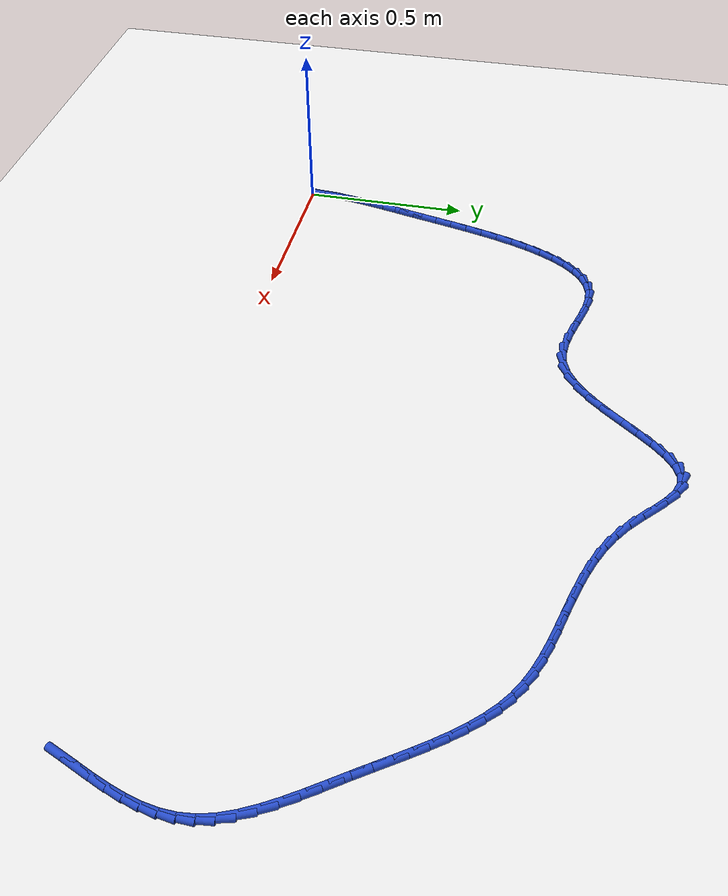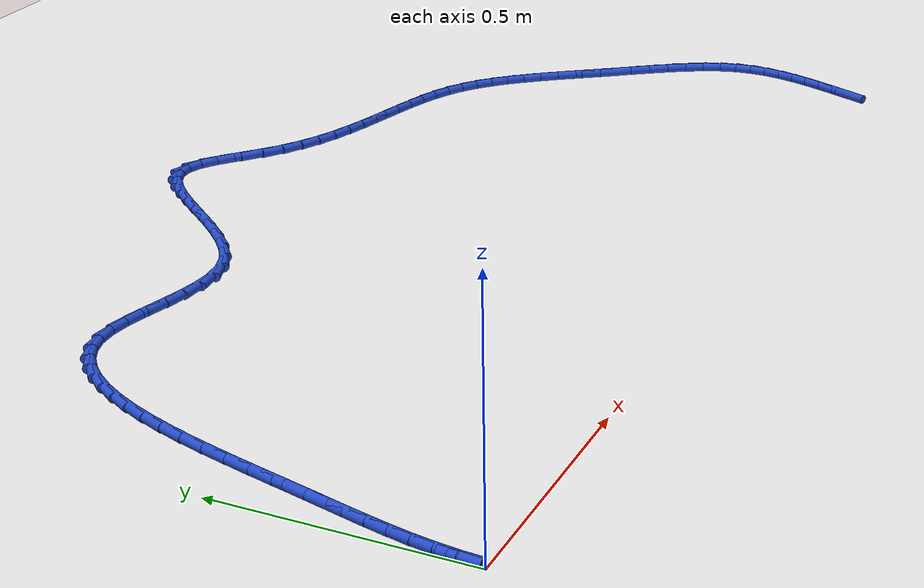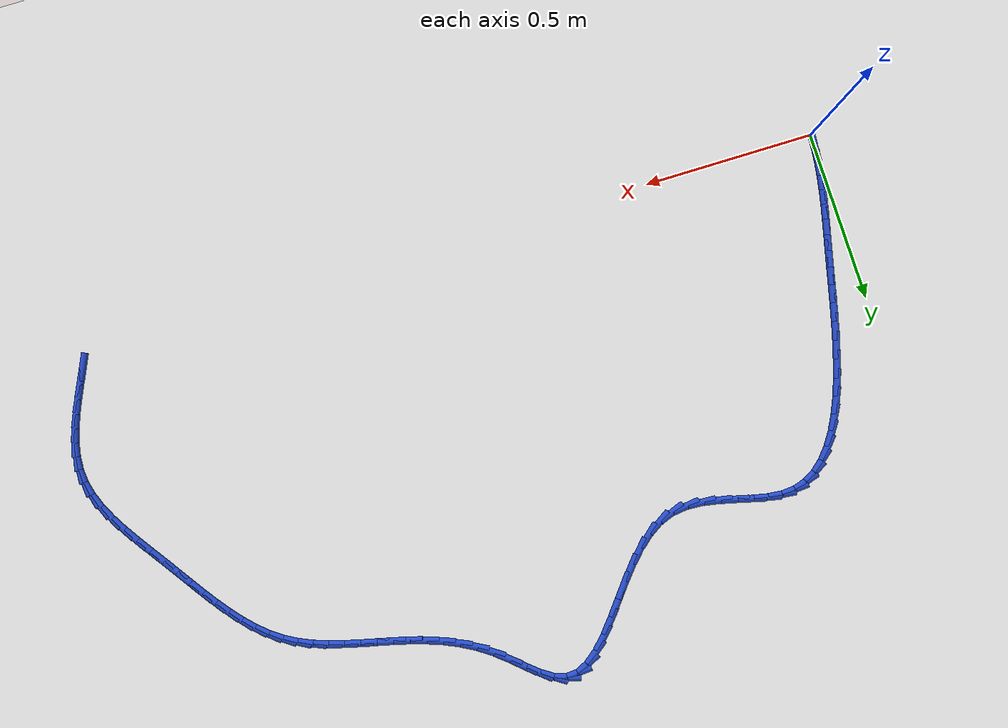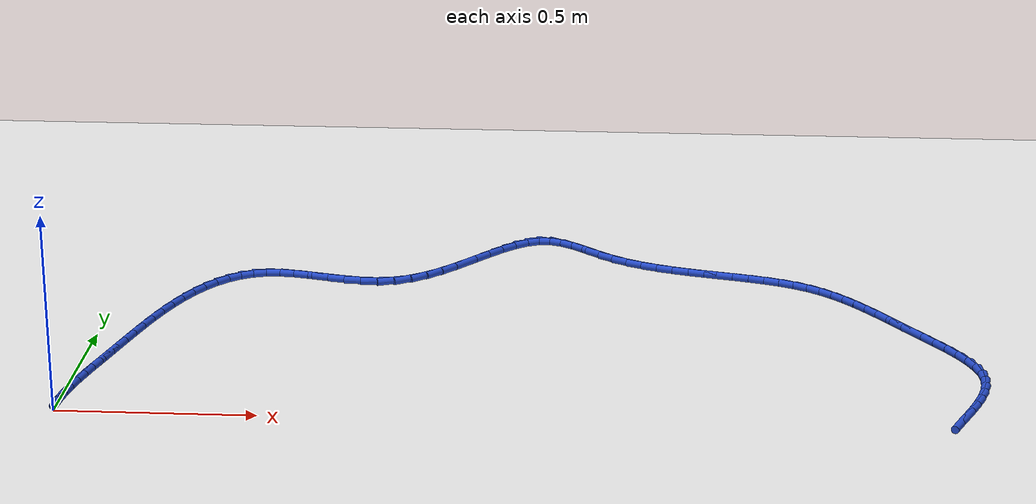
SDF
<sdf version="1.6">
 <world name="default">
  <model name="ground_plane">
   <static>1</static>
   <link name="link">
    <collision name="collision">
     <geometry><plane><normal>0 0 1</normal><size>100 100</size></plane></geometry>
     <surface><friction><ode><mu>100</mu><mu2>50</mu2></ode></friction></surface>
    </collision>
    <visual name="visual">
     <cast_shadows>0</cast_shadows>
     <geometry><plane><normal>0 0 1</normal><size>100 100</size></plane></geometry>
     <material>
      <script><uri>file://media/materials/scripts/gazebo.material</uri><name>Gazebo/WhiteGlow</name></script>
     </material>
    </visual>
   </link>
  </model>
  <model name="line">
   <link name="link_1">
    <pose>0.0026496096669003204 0.04307282719865497 0.01 0 1.57 1.460139329362251</pose>
    <collision name="collision">
     <geometry><cylinder><radius>0.01</radius><length>0.08</length></cylinder></geometry>
    </collision>
    <visual name="visual">
     <material>
      <script><name>Gazebo/Blue</name><uri>file://media/materials/scripts/gazebo.material</uri></script>
     </material>
     <geometry><cylinder><radius>0.01</radius><length>0.08</length></cylinder></geometry>
    </visual>
   </link>
   <link name="link_2">
    <pose>0.007363580412355519 0.08549865039412194 0.01 0 1.57 1.4174308928001462</pose>
    <collision name="collision">
     <geometry><cylinder><radius>0.01</radius><length>0.08</length></cylinder></geometry>
    </collision>
    <visual name="visual">
     <material>
      <script><name>Gazebo/Blue</name><uri>file://media/materials/scripts/gazebo.material</uri></script>
     </material>
     <geometry><cylinder><radius>0.01</radius><length>0.08</length></cylinder></geometry>
    </visual>
   </link>
   <link name="link_3">
    <pose>0.01388491874355268 0.1276863092239814 0.01 0 1.57 1.3824960369768609</pose>
    <collision name="collision">
     <geometry><cylinder><radius>0.01</radius><length>0.08</length></cylinder></geometry>
    </collision>
    <visual name="visual">
     <material>
      <script><name>Gazebo/Blue</name><uri>file://media/materials/scripts/gazebo.material</uri></script>
     </material>
     <geometry><cylinder><radius>0.01</radius><length>0.08</length></cylinder></geometry>
    </visual>
   </link>
   <link name="link_4">
    <pose>0.021956631167678986 0.170044643325814 0.01 0 1.57 1.3560512879209734</pose>
    <collision name="collision">
     <geometry><cylinder><radius>0.01</radius><length>0.08</length></cylinder></geometry>
    </collision>
    <visual name="visual">
     <material>
      <script><name>Gazebo/Blue</name><uri>file://media/materials/scripts/gazebo.material</uri></script>
     </material>
     <geometry><cylinder><radius>0.01</radius><length>0.08</length></cylinder></geometry>
    </visual>
   </link>
   <link name="link_5">
    <pose>0.03132172419192152 0.21298249233720015 0.01 0 1.57 1.3382845328337616</pose>
    <collision name="collision">
     <geometry><cylinder><radius>0.01</radius><length>0.08</length></cylinder></geometry>
    </collision>
    <visual name="visual">
     <material>
      <script><name>Gazebo/Blue</name><uri>file://media/materials/scripts/gazebo.material</uri></script>
     </material>
     <geometry><cylinder><radius>0.01</radius><length>0.08</length></cylinder></geometry>
    </visual>
   </link>
   <link name="link_6">
    <pose>0.04172320432346745 0.2569086958957203 0.01 0 1.57 1.3289344449897182</pose>
    <collision name="collision">
     <geometry><cylinder><radius>0.01</radius><length>0.08</length></cylinder></geometry>
    </collision>
    <visual name="visual">
     <material>
      <script><name>Gazebo/Blue</name><uri>file://media/materials/scripts/gazebo.material</uri></script>
     </material>
     <geometry><cylinder><radius>0.01</radius><length>0.08</length></cylinder></geometry>
    </visual>
   </link>
   <link name="link_7">
    <pose>0.052904078069503924 0.3022320936389553 0.01 0 1.57 1.3273975969979865</pose>
    <collision name="collision">
     <geometry><cylinder><radius>0.01</radius><length>0.08</length></cylinder></geometry>
    </collision>
    <visual name="visual">
     <material>
      <script><name>Gazebo/Blue</name><uri>file://media/materials/scripts/gazebo.material</uri></script>
     </material>
     <geometry><cylinder><radius>0.01</radius><length>0.08</length></cylinder></geometry>
    </visual>
   </link>
   <link name="link_8">
    <pose>0.06460735193721806 0.3493615252044854 0.01 0 1.57 1.3318365359500797</pose>
    <collision name="collision">
     <geometry><cylinder><radius>0.01</radius><length>0.08</length></cylinder></geometry>
    </collision>
    <visual name="visual">
     <material>
      <script><name>Gazebo/Blue</name><uri>file://media/materials/scripts/gazebo.material</uri></script>
     </material>
     <geometry><cylinder><radius>0.01</radius><length>0.08</length></cylinder></geometry>
    </visual>
   </link>
   <link name="link_9">
    <pose>0.07660898984305621 0.3986264044124486 0.01 0 1.57 1.3332804026628118</pose>
    <collision name="collision">
     <geometry><cylinder><radius>0.01</radius><length>0.08</length></cylinder></geometry>
    </collision>
    <visual name="visual">
     <material>
      <script><name>Gazebo/Blue</name><uri>file://media/materials/scripts/gazebo.material</uri></script>
     </material>
     <geometry><cylinder><radius>0.01</radius><length>0.08</length></cylinder></geometry>
    </visual>
   </link>
   <link name="link_10">
    <pose>0.08896728992933452 0.44967573278160305 0.01 0 1.57 1.3279400840466655</pose>
    <collision name="collision">
     <geometry><cylinder><radius>0.01</radius><length>0.08</length></cylinder></geometry>
    </collision>
    <visual name="visual">
     <material>
      <script><name>Gazebo/Blue</name><uri>file://media/materials/scripts/gazebo.material</uri></script>
     </material>
     <geometry><cylinder><radius>0.01</radius><length>0.08</length></cylinder></geometry>
    </visual>
   </link>
   <link name="link_11">
    <pose>0.10188402960887925 0.5018127334882201 0.01 0 1.57 1.31604414092353</pose>
    <collision name="collision">
     <geometry><cylinder><radius>0.01</radius><length>0.08</length></cylinder></geometry>
    </collision>
    <visual name="visual">
     <material>
      <script><name>Gazebo/Blue</name><uri>file://media/materials/scripts/gazebo.material</uri></script>
     </material>
     <geometry><cylinder><radius>0.01</radius><length>0.08</length></cylinder></geometry>
    </visual>
   </link>
   <link name="link_12">
    <pose>0.11556211673399626 0.5543379054022088 0.01 0 1.57 1.2973886681237063</pose>
    <collision name="collision">
     <geometry><cylinder><radius>0.01</radius><length>0.08</length></cylinder></geometry>
    </collision>
    <visual name="visual">
     <material>
      <script><name>Gazebo/Blue</name><uri>file://media/materials/scripts/gazebo.material</uri></script>
     </material>
     <geometry><cylinder><radius>0.01</radius><length>0.08</length></cylinder></geometry>
    </visual>
   </link>
   <link name="link_13">
    <pose>0.13020445915699155 0.6065517473934785 0.01 0 1.57 1.2713211971521223</pose>
    <collision name="collision">
     <geometry><cylinder><radius>0.01</radius><length>0.08</length></cylinder></geometry>
    </collision>
    <visual name="visual">
     <material>
      <script><name>Gazebo/Blue</name><uri>file://media/materials/scripts/gazebo.material</uri></script>
     </material>
     <geometry><cylinder><radius>0.01</radius><length>0.08</length></cylinder></geometry>
    </visual>
   </link>
   <link name="link_14">
    <pose>0.14601396473017092 0.6577547583319379 0.01 0 1.57 1.2366953171147226</pose>
    <collision name="collision">
     <geometry><cylinder><radius>0.01</radius><length>0.08</length></cylinder></geometry>
    </collision>
    <visual name="visual">
     <material>
      <script><name>Gazebo/Blue</name><uri>file://media/materials/scripts/gazebo.material</uri></script>
     </material>
     <geometry><cylinder><radius>0.01</radius><length>0.08</length></cylinder></geometry>
    </visual>
   </link>
   <link name="link_15">
    <pose>0.16319354130584038 0.7072474370874962 0.01 0 1.57 1.1917662592871698</pose>
    <collision name="collision">
     <geometry><cylinder><radius>0.01</radius><length>0.08</length></cylinder></geometry>
    </collision>
    <visual name="visual">
     <material>
      <script><name>Gazebo/Blue</name><uri>file://media/materials/scripts/gazebo.material</uri></script>
     </material>
     <geometry><cylinder><radius>0.01</radius><length>0.08</length></cylinder></geometry>
    </visual>
   </link>
   <link name="link_16">
    <pose>0.1819460967363059 0.7543302825300626 0.01 0 1.57 1.13402967386434</pose>
    <collision name="collision">
     <geometry><cylinder><radius>0.01</radius><length>0.08</length></cylinder></geometry>
    </collision>
    <visual name="visual">
     <material>
      <script><name>Gazebo/Blue</name><uri>file://media/materials/scripts/gazebo.material</uri></script>
     </material>
     <geometry><cylinder><radius>0.01</radius><length>0.08</length></cylinder></geometry>
    </visual>
   </link>
   <link name="link_17">
    <pose>0.20247453887387334 0.7983037935295462 0.01 0 1.57 1.0600233958224863</pose>
    <collision name="collision">
     <geometry><cylinder><radius>0.01</radius><length>0.08</length></cylinder></geometry>
    </collision>
    <visual name="visual">
     <material>
      <script><name>Gazebo/Blue</name><uri>file://media/materials/scripts/gazebo.material</uri></script>
     </material>
     <geometry><cylinder><radius>0.01</radius><length>0.08</length></cylinder></geometry>
    </visual>
   </link>
   <link name="link_18">
    <pose>0.22498177557084853 0.8384684689558555 0.01 0 1.57 0.9651799736025226</pose>
    <collision name="collision">
     <geometry><cylinder><radius>0.01</radius><length>0.08</length></cylinder></geometry>
    </collision>
    <visual name="visual">
     <material>
      <script><name>Gazebo/Blue</name><uri>file://media/materials/scripts/gazebo.material</uri></script>
     </material>
     <geometry><cylinder><radius>0.01</radius><length>0.08</length></cylinder></geometry>
    </visual>
   </link>
   <link name="link_19">
    <pose>0.24967071467953755 0.8741248076789001 0.01 0 1.57 0.8440032859838902</pose>
    <collision name="collision">
     <geometry><cylinder><radius>0.01</radius><length>0.08</length></cylinder></geometry>
    </collision>
    <visual name="visual">
     <material>
      <script><name>Gazebo/Blue</name><uri>file://media/materials/scripts/gazebo.material</uri></script>
     </material>
     <geometry><cylinder><radius>0.01</radius><length>0.08</length></cylinder></geometry>
    </visual>
   </link>
   <link name="link_20">
    <pose>0.2767442640522463 0.9045733085685889 0.01 0 1.57 0.691218291757534</pose>
    <collision name="collision">
     <geometry><cylinder><radius>0.01</radius><length>0.08</length></cylinder></geometry>
    </collision>
    <visual name="visual">
     <material>
      <script><name>Gazebo/Blue</name><uri>file://media/materials/scripts/gazebo.material</uri></script>
     </material>
     <geometry><cylinder><radius>0.01</radius><length>0.08</length></cylinder></geometry>
    </visual>
   </link>
   <link name="link_21">
    <pose>0.3064053315412807 0.9291144704948312 0.01 0 1.57 0.5048755767474941</pose>
    <collision name="collision">
     <geometry><cylinder><radius>0.01</radius><length>0.08</length></cylinder></geometry>
    </collision>
    <visual name="visual">
     <material>
      <script><name>Gazebo/Blue</name><uri>file://media/materials/scripts/gazebo.material</uri></script>
     </material>
     <geometry><cylinder><radius>0.01</radius><length>0.08</length></cylinder></geometry>
    </visual>
   </link>
   <link name="link_22">
    <pose>0.3388568249989464 0.9470487923275355 0.01 0 1.57 0.29131526927594054</pose>
    <collision name="collision">
     <geometry><cylinder><radius>0.01</radius><length>0.08</length></cylinder></geometry>
    </collision>
    <visual name="visual">
     <material>
      <script><name>Gazebo/Blue</name><uri>file://media/materials/scripts/gazebo.material</uri></script>
     </material>
     <geometry><cylinder><radius>0.01</radius><length>0.08</length></cylinder></geometry>
    </visual>
   </link>
   <link name="link_23">
    <pose>0.37430165227754975 0.9576767729366116 0.01 0 1.57 0.06888097786250724</pose>
    <collision name="collision">
     <geometry><cylinder><radius>0.01</radius><length>0.08</length></cylinder></geometry>
    </collision>
    <visual name="visual">
     <material>
      <script><name>Gazebo/Blue</name><uri>file://media/materials/scripts/gazebo.material</uri></script>
     </material>
     <geometry><cylinder><radius>0.01</radius><length>0.08</length></cylinder></geometry>
    </visual>
   </link>
   <link name="link_24">
    <pose>0.4129302743863518 0.9603417663008713 0.01 0 1.57 -0.1087090265260488</pose>
    <collision name="collision">
     <geometry><cylinder><radius>0.01</radius><length>0.08</length></cylinder></geometry>
    </collision>
    <visual name="visual">
     <material>
      <script><name>Gazebo/Blue</name><uri>file://media/materials/scripts/gazebo.material</uri></script>
     </material>
     <geometry><cylinder><radius>0.01</radius><length>0.08</length></cylinder></geometry>
    </visual>
   </link>
   <link name="link_25">
    <pose>0.454522080896925 0.9558024661094408 0.01 0 1.57 -0.20859219315116076</pose>
    <collision name="collision">
     <geometry><cylinder><radius>0.01</radius><length>0.08</length></cylinder></geometry>
    </collision>
    <visual name="visual">
     <material>
      <script><name>Gazebo/Blue</name><uri>file://media/materials/scripts/gazebo.material</uri></script>
     </material>
     <geometry><cylinder><radius>0.01</radius><length>0.08</length></cylinder></geometry>
    </visual>
   </link>
   <link name="link_26">
    <pose>0.498361133587482 0.9465230046474837 0.01 0 1.57 -0.2474423943853463</pose>
    <collision name="collision">
     <geometry><cylinder><radius>0.01</radius><length>0.08</length></cylinder></geometry>
    </collision>
    <visual name="visual">
     <material>
      <script><name>Gazebo/Blue</name><uri>file://media/materials/scripts/gazebo.material</uri></script>
     </material>
     <geometry><cylinder><radius>0.01</radius><length>0.08</length></cylinder></geometry>
    </visual>
   </link>
   <link name="link_27">
    <pose>0.5437020122654131 0.9350690221139187 0.01 0 1.57 -0.23553503521103783</pose>
    <collision name="collision">
     <geometry><cylinder><radius>0.01</radius><length>0.08</length></cylinder></geometry>
    </collision>
    <visual name="visual">
     <material>
      <script><name>Gazebo/Blue</name><uri>file://media/materials/scripts/gazebo.material</uri></script>
     </material>
     <geometry><cylinder><radius>0.01</radius><length>0.08</length></cylinder></geometry>
    </visual>
   </link>
   <link name="link_28">
    <pose>0.5897992967381088 0.9240061587076634 0.01 0 1.57 -0.17402747333654878</pose>
    <collision name="collision">
     <geometry><cylinder><radius>0.01</radius><length>0.08</length></cylinder></geometry>
    </collision>
    <visual name="visual">
     <material>
      <script><name>Gazebo/Blue</name><uri>file://media/materials/scripts/gazebo.material</uri></script>
     </material>
     <geometry><cylinder><radius>0.01</radius><length>0.08</length></cylinder></geometry>
    </visual>
   </link>
   <link name="link_29">
    <pose>0.6359075668129591 0.9159000546276366 0.01 0 1.57 -0.05688118333882828</pose>
    <collision name="collision">
     <geometry><cylinder><radius>0.01</radius><length>0.08</length></cylinder></geometry>
    </collision>
    <visual name="visual">
     <material>
      <script><name>Gazebo/Blue</name><uri>file://media/materials/scripts/gazebo.material</uri></script>
     </material>
     <geometry><cylinder><radius>0.01</radius><length>0.08</length></cylinder></geometry>
    </visual>
   </link>
   <link name="link_30">
    <pose>0.6812814022973541 0.9133163500727559 0.01 0 1.57 0.12474949393419657</pose>
    <collision name="collision">
     <geometry><cylinder><radius>0.01</radius><length>0.08</length></cylinder></geometry>
    </collision>
    <visual name="visual">
     <material>
      <script><name>Gazebo/Blue</name><uri>file://media/materials/scripts/gazebo.material</uri></script>
     </material>
     <geometry><cylinder><radius>0.01</radius><length>0.08</length></cylinder></geometry>
    </visual>
   </link>
   <link name="link_31">
    <pose>0.7251753829986847 0.9188206852419399 0.01 0 1.57 0.36061511473032476</pose>
    <collision name="collision">
     <geometry><cylinder><radius>0.01</radius><length>0.08</length></cylinder></geometry>
    </collision>
    <visual name="visual">
     <material>
      <script><name>Gazebo/Blue</name><uri>file://media/materials/scripts/gazebo.material</uri></script>
     </material>
     <geometry><cylinder><radius>0.01</radius><length>0.08</length></cylinder></geometry>
    </visual>
   </link>
   <link name="link_32">
    <pose>0.7669325696557691 0.9345675407247536 0.01 0 1.57 0.5662187043159957</pose>
    <collision name="collision">
     <geometry><cylinder><radius>0.01</radius><length>0.08</length></cylinder></geometry>
    </collision>
    <visual name="visual">
     <material>
      <script><name>Gazebo/Blue</name><uri>file://media/materials/scripts/gazebo.material</uri></script>
     </material>
     <geometry><cylinder><radius>0.01</radius><length>0.08</length></cylinder></geometry>
    </visual>
   </link>
   <link name="link_33">
    <pose>0.8065352765329802 0.9597408674655573 0.01 0 1.57 0.7109833255921929</pose>
    <collision name="collision">
     <geometry><cylinder><radius>0.01</radius><length>0.08</length></cylinder></geometry>
    </collision>
    <visual name="visual">
     <material>
      <script><name>Gazebo/Blue</name><uri>file://media/materials/scripts/gazebo.material</uri></script>
     </material>
     <geometry><cylinder><radius>0.01</radius><length>0.08</length></cylinder></geometry>
    </visual>
   </link>
   <link name="link_34">
    <pose>0.8442466895998031 0.9922194413988233 0.01 0 1.57 0.8067189992806727</pose>
    <collision name="collision">
     <geometry><cylinder><radius>0.01</radius><length>0.08</length></cylinder></geometry>
    </collision>
    <visual name="visual">
     <material>
      <script><name>Gazebo/Blue</name><uri>file://media/materials/scripts/gazebo.material</uri></script>
     </material>
     <geometry><cylinder><radius>0.01</radius><length>0.08</length></cylinder></geometry>
    </visual>
   </link>
   <link name="link_35">
    <pose>0.8803312031458321 1.0298764235495068 0.01 0 1.57 0.8645971121159285</pose>
    <collision name="collision">
     <geometry><cylinder><radius>0.01</radius><length>0.08</length></cylinder></geometry>
    </collision>
    <visual name="visual">
     <material>
      <script><name>Gazebo/Blue</name><uri>file://media/materials/scripts/gazebo.material</uri></script>
     </material>
     <geometry><cylinder><radius>0.01</radius><length>0.08</length></cylinder></geometry>
    </visual>
   </link>
   <link name="link_36">
    <pose>0.9150532114606617 1.0705849749425616 0.01 0 1.57 0.8914258986588142</pose>
    <collision name="collision">
     <geometry><cylinder><radius>0.01</radius><length>0.08</length></cylinder></geometry>
    </collision>
    <visual name="visual">
     <material>
      <script><name>Gazebo/Blue</name><uri>file://media/materials/scripts/gazebo.material</uri></script>
     </material>
     <geometry><cylinder><radius>0.01</radius><length>0.08</length></cylinder></geometry>
    </visual>
   </link>
   <link name="link_37">
    <pose>0.9486771088338859 1.1122182566029424 0.01 0 1.57 0.8893765129638842</pose>
    <collision name="collision">
     <geometry><cylinder><radius>0.01</radius><length>0.08</length></cylinder></geometry>
    </collision>
    <visual name="visual">
     <material>
      <script><name>Gazebo/Blue</name><uri>file://media/materials/scripts/gazebo.material</uri></script>
     </material>
     <geometry><cylinder><radius>0.01</radius><length>0.08</length></cylinder></geometry>
    </visual>
   </link>
   <link name="link_38">
    <pose>0.9814672895550991 1.1526494295556033 0.01 0 1.57 0.8556968707887486</pose>
    <collision name="collision">
     <geometry><cylinder><radius>0.01</radius><length>0.08</length></cylinder></geometry>
    </collision>
    <visual name="visual">
     <material>
      <script><name>Gazebo/Blue</name><uri>file://media/materials/scripts/gazebo.material</uri></script>
     </material>
     <geometry><cylinder><radius>0.01</radius><length>0.08</length></cylinder></geometry>
    </visual>
   </link>
   <link name="link_39">
    <pose>1.013688147913896 1.1897516548254996 0.01 0 1.57 0.7811583897106996</pose>
    <collision name="collision">
     <geometry><cylinder><radius>0.01</radius><length>0.08</length></cylinder></geometry>
    </collision>
    <visual name="visual">
     <material>
      <script><name>Gazebo/Blue</name><uri>file://media/materials/scripts/gazebo.material</uri></script>
     </material>
     <geometry><cylinder><radius>0.01</radius><length>0.08</length></cylinder></geometry>
    </visual>
   </link>
   <link name="link_40">
    <pose>1.04560407819987 1.2213980934375848 0.01 0 1.57 0.6466512454995315</pose>
    <collision name="collision">
     <geometry><cylinder><radius>0.01</radius><length>0.08</length></cylinder></geometry>
    </collision>
    <visual name="visual">
     <material>
      <script><name>Gazebo/Blue</name><uri>file://media/materials/scripts/gazebo.material</uri></script>
     </material>
     <geometry><cylinder><radius>0.01</radius><length>0.08</length></cylinder></geometry>
    </visual>
   </link>
   <link name="link_41">
    <pose>1.0774794747026155 1.2454619064168135 0.01 0 1.57 0.42051159910092095</pose>
    <collision name="collision">
     <geometry><cylinder><radius>0.01</radius><length>0.08</length></cylinder></geometry>
    </collision>
    <visual name="visual">
     <material>
      <script><name>Gazebo/Blue</name><uri>file://media/materials/scripts/gazebo.material</uri></script>
     </material>
     <geometry><cylinder><radius>0.01</radius><length>0.08</length></cylinder></geometry>
    </visual>
   </link>
   <link name="link_42">
    <pose>1.1095787317117276 1.2598162547881409 0.01 0 1.57 0.07711700090607639</pose>
    <collision name="collision">
     <geometry><cylinder><radius>0.01</radius><length>0.08</length></cylinder></geometry>
    </collision>
    <visual name="visual">
     <material>
      <script><name>Gazebo/Blue</name><uri>file://media/materials/scripts/gazebo.material</uri></script>
     </material>
     <geometry><cylinder><radius>0.01</radius><length>0.08</length></cylinder></geometry>
    </visual>
   </link>
   <link name="link_43">
    <pose>1.1421662435167996 1.262334299576521 0.01 0 1.57 -0.3197321535231422</pose>
    <collision name="collision">
     <geometry><cylinder><radius>0.01</radius><length>0.08</length></cylinder></geometry>
    </collision>
    <visual name="visual">
     <material>
      <script><name>Gazebo/Blue</name><uri>file://media/materials/scripts/gazebo.material</uri></script>
     </material>
     <geometry><cylinder><radius>0.01</radius><length>0.08</length></cylinder></geometry>
    </visual>
   </link>
   <link name="link_44">
    <pose>1.1755025355176567 1.2512969143012802 0.01 0 1.57 -0.5799717321479565</pose>
    <collision name="collision">
     <geometry><cylinder><radius>0.01</radius><length>0.08</length></cylinder></geometry>
    </collision>
    <visual name="visual">
     <material>
      <script><name>Gazebo/Blue</name><uri>file://media/materials/scripts/gazebo.material</uri></script>
     </material>
     <geometry><cylinder><radius>0.01</radius><length>0.08</length></cylinder></geometry>
    </visual>
   </link>
   <link name="link_45">
    <pose>1.209811741626421 1.2288199910815454 0.01 0 1.57 -0.6968246334765356</pose>
    <collision name="collision">
     <geometry><cylinder><radius>0.01</radius><length>0.08</length></cylinder></geometry>
    </collision>
    <visual name="visual">
     <material>
      <script><name>Gazebo/Blue</name><uri>file://media/materials/scripts/gazebo.material</uri></script>
     </material>
     <geometry><cylinder><radius>0.01</radius><length>0.08</length></cylinder></geometry>
    </visual>
   </link>
   <link name="link_46">
    <pose>1.2452980400003082 1.1991224053455214 0.01 0 1.57 -0.7252281345553646</pose>
    <collision name="collision">
     <geometry><cylinder><radius>0.01</radius><length>0.08</length></cylinder></geometry>
    </collision>
    <visual name="visual">
     <material>
      <script><name>Gazebo/Blue</name><uri>file://media/materials/scripts/gazebo.material</uri></script>
     </material>
     <geometry><cylinder><radius>0.01</radius><length>0.08</length></cylinder></geometry>
    </visual>
   </link>
   <link name="link_47">
    <pose>1.2821654038363102 1.1664446317009598 0.01 0 1.57 -0.6850529834486366</pose>
    <collision name="collision">
     <geometry><cylinder><radius>0.01</radius><length>0.08</length></cylinder></geometry>
    </collision>
    <visual name="visual">
     <material>
      <script><name>Gazebo/Blue</name><uri>file://media/materials/scripts/gazebo.material</uri></script>
     </material>
     <geometry><cylinder><radius>0.01</radius><length>0.08</length></cylinder></geometry>
    </visual>
   </link>
   <link name="link_48">
    <pose>1.32061779022801 1.135026992760359 0.01 0 1.57 -0.5902988109571177</pose>
    <collision name="collision">
     <geometry><cylinder><radius>0.01</radius><length>0.08</length></cylinder></geometry>
    </collision>
    <visual name="visual">
     <material>
      <script><name>Gazebo/Blue</name><uri>file://media/materials/scripts/gazebo.material</uri></script>
     </material>
     <geometry><cylinder><radius>0.01</radius><length>0.08</length></cylinder></geometry>
    </visual>
   </link>
   <link name="link_49">
    <pose>1.3607558717823172 1.1081349396417972 0.01 0 1.57 -0.49401061503865684</pose>
    <collision name="collision">
     <geometry><cylinder><radius>0.01</radius><length>0.08</length></cylinder></geometry>
    </collision>
    <visual name="visual">
     <material>
      <script><name>Gazebo/Blue</name><uri>file://media/materials/scripts/gazebo.material</uri></script>
     </material>
     <geometry><cylinder><radius>0.01</radius><length>0.08</length></cylinder></geometry>
    </visual>
   </link>
   <link name="link_50">
    <pose>1.4023317850599142 1.085744195575143 0.01 0 1.57 -0.4110133203528333</pose>
    <collision name="collision">
     <geometry><cylinder><radius>0.01</radius><length>0.08</length></cylinder></geometry>
    </collision>
    <visual name="visual">
     <material>
      <script><name>Gazebo/Blue</name><uri>file://media/materials/scripts/gazebo.material</uri></script>
     </material>
     <geometry><cylinder><radius>0.01</radius><length>0.08</length></cylinder></geometry>
    </visual>
   </link>
   <link name="link_51">
    <pose>1.4450242232540627 1.0671372737288356 0.01 0 1.57 -0.3432131948759112</pose>
    <collision name="collision">
     <geometry><cylinder><radius>0.01</radius><length>0.08</length></cylinder></geometry>
    </collision>
    <visual name="visual">
     <material>
      <script><name>Gazebo/Blue</name><uri>file://media/materials/scripts/gazebo.material</uri></script>
     </material>
     <geometry><cylinder><radius>0.01</radius><length>0.08</length></cylinder></geometry>
    </visual>
   </link>
   <link name="link_52">
    <pose>1.4885118795580246 1.0515966872713136 0.01 0 1.57 -0.2915249848013818</pose>
    <collision name="collision">
     <geometry><cylinder><radius>0.01</radius><length>0.08</length></cylinder></geometry>
    </collision>
    <visual name="visual">
     <material>
      <script><name>Gazebo/Blue</name><uri>file://media/materials/scripts/gazebo.material</uri></script>
     </material>
     <geometry><cylinder><radius>0.01</radius><length>0.08</length></cylinder></geometry>
    </visual>
   </link>
   <link name="link_53">
    <pose>1.5324734471650612 1.0384049493710177 0.01 0 1.57 -0.2562927522322494</pose>
    <collision name="collision">
     <geometry><cylinder><radius>0.01</radius><length>0.08</length></cylinder></geometry>
    </collision>
    <visual name="visual">
     <material>
      <script><name>Gazebo/Blue</name><uri>file://media/materials/scripts/gazebo.material</uri></script>
     </material>
     <geometry><cylinder><radius>0.01</radius><length>0.08</length></cylinder></geometry>
    </visual>
   </link>
   <link name="link_54">
    <pose>1.5765876192684334 1.0268445731963858 0.01 0 1.57 -0.2376866372476625</pose>
    <collision name="collision">
     <geometry><cylinder><radius>0.01</radius><length>0.08</length></cylinder></geometry>
    </collision>
    <visual name="visual">
     <material>
      <script><name>Gazebo/Blue</name><uri>file://media/materials/scripts/gazebo.material</uri></script>
     </material>
     <geometry><cylinder><radius>0.01</radius><length>0.08</length></cylinder></geometry>
    </visual>
   </link>
   <link name="link_55">
    <pose>1.6205330890614036 1.0161980719158576 0.01 0 1.57 -0.23599757157807744</pose>
    <collision name="collision">
     <geometry><cylinder><radius>0.01</radius><length>0.08</length></cylinder></geometry>
    </collision>
    <visual name="visual">
     <material>
      <script><name>Gazebo/Blue</name><uri>file://media/materials/scripts/gazebo.material</uri></script>
     </material>
     <geometry><cylinder><radius>0.01</radius><length>0.08</length></cylinder></geometry>
    </visual>
   </link>
   <link name="link_56">
    <pose>1.6639885497372324 1.0057479586978726 0.01 0 1.57 -0.25181258754173313</pose>
    <collision name="collision">
     <geometry><cylinder><radius>0.01</radius><length>0.08</length></cylinder></geometry>
    </collision>
    <visual name="visual">
     <material>
      <script><name>Gazebo/Blue</name><uri>file://media/materials/scripts/gazebo.material</uri></script>
     </material>
     <geometry><cylinder><radius>0.01</radius><length>0.08</length></cylinder></geometry>
    </visual>
   </link>
   <link name="link_57">
    <pose>1.7066326944891816 0.9947767467108699 0.01 0 1.57 -0.28606311298198234</pose>
    <collision name="collision">
     <geometry><cylinder><radius>0.01</radius><length>0.08</length></cylinder></geometry>
    </collision>
    <visual name="visual">
     <material>
      <script><name>Gazebo/Blue</name><uri>file://media/materials/scripts/gazebo.material</uri></script>
     </material>
     <geometry><cylinder><radius>0.01</radius><length>0.08</length></cylinder></geometry>
    </visual>
   </link>
   <link name="link_58">
    <pose>1.7481442165105134 0.9825669491232889 0.01 0 1.57 -0.33991174146069714</pose>
    <collision name="collision">
     <geometry><cylinder><radius>0.01</radius><length>0.08</length></cylinder></geometry>
    </collision>
    <visual name="visual">
     <material>
      <script><name>Gazebo/Blue</name><uri>file://media/materials/scripts/gazebo.material</uri></script>
     </material>
     <geometry><cylinder><radius>0.01</radius><length>0.08</length></cylinder></geometry>
    </visual>
   </link>
   <link name="link_59">
    <pose>1.7882018089944887 0.968401079103569 0.01 0 1.57 -0.4144016603427869</pose>
    <collision name="collision">
     <geometry><cylinder><radius>0.01</radius><length>0.08</length></cylinder></geometry>
    </collision>
    <visual name="visual">
     <material>
      <script><name>Gazebo/Blue</name><uri>file://media/materials/scripts/gazebo.material</uri></script>
     </material>
     <geometry><cylinder><radius>0.01</radius><length>0.08</length></cylinder></geometry>
    </visual>
   </link>
   <link name="link_60">
    <pose>1.8264841651343686 0.9515616498201493 0.01 0 1.57 -0.509780699336614</pose>
    <collision name="collision">
     <geometry><cylinder><radius>0.01</radius><length>0.08</length></cylinder></geometry>
    </collision>
    <visual name="visual">
     <material>
      <script><name>Gazebo/Blue</name><uri>file://media/materials/scripts/gazebo.material</uri></script>
     </material>
     <geometry><cylinder><radius>0.01</radius><length>0.08</length></cylinder></geometry>
    </visual>
   </link>
   <link name="link_61">
    <pose>1.8626699964901778 0.9313312068680716 0.01 0 1.57 -0.6181137366673775</pose>
    <collision name="collision">
     <geometry><cylinder><radius>0.01</radius><length>0.08</length></cylinder></geometry>
    </collision>
    <visual name="visual">
     <material>
      <script><name>Gazebo/Blue</name><uri>file://media/materials/scripts/gazebo.material</uri></script>
     </material>
     <geometry><cylinder><radius>0.01</radius><length>0.08</length></cylinder></geometry>
    </visual>
   </link>
   <link name="link_62">
    <pose>1.8965703138603482 0.9072258707457962 0.01 0 1.57 -0.7149017972623273</pose>
    <collision name="collision">
     <geometry><cylinder><radius>0.01</radius><length>0.08</length></cylinder></geometry>
    </collision>
    <visual name="visual">
     <material>
      <script><name>Gazebo/Blue</name><uri>file://media/materials/scripts/gazebo.material</uri></script>
     </material>
     <geometry><cylinder><radius>0.01</radius><length>0.08</length></cylinder></geometry>
    </visual>
   </link>
   <link name="link_63">
    <pose>1.9284456041572378 0.8795553140626048 0.01 0 1.57 -0.794446242574055</pose>
    <collision name="collision">
     <geometry><cylinder><radius>0.01</radius><length>0.08</length></cylinder></geometry>
    </collision>
    <visual name="visual">
     <material>
      <script><name>Gazebo/Blue</name><uri>file://media/materials/scripts/gazebo.material</uri></script>
     </material>
     <geometry><cylinder><radius>0.01</radius><length>0.08</length></cylinder></geometry>
    </visual>
   </link>
   <link name="link_64">
    <pose>1.9586517197801137 0.8487975776259856 0.01 0 1.57 -0.8571364872842282</pose>
    <collision name="collision">
     <geometry><cylinder><radius>0.01</radius><length>0.08</length></cylinder></geometry>
    </collision>
    <visual name="visual">
     <material>
      <script><name>Gazebo/Blue</name><uri>file://media/materials/scripts/gazebo.material</uri></script>
     </material>
     <geometry><cylinder><radius>0.01</radius><length>0.08</length></cylinder></geometry>
    </visual>
   </link>
   <link name="link_65">
    <pose>1.987544513128244 0.8154307022434258 0.01 0 1.57 -0.9040601488476946</pose>
    <collision name="collision">
     <geometry><cylinder><radius>0.01</radius><length>0.08</length></cylinder></geometry>
    </collision>
    <visual name="visual">
     <material>
      <script><name>Gazebo/Blue</name><uri>file://media/materials/scripts/gazebo.material</uri></script>
     </material>
     <geometry><cylinder><radius>0.01</radius><length>0.08</length></cylinder></geometry>
    </visual>
   </link>
   <link name="link_66">
    <pose>2.015479836600899 0.7799327287224133 0.01 0 1.57 -0.9364806510068215</pose>
    <collision name="collision">
     <geometry><cylinder><radius>0.01</radius><length>0.08</length></cylinder></geometry>
    </collision>
    <visual name="visual">
     <material>
      <script><name>Gazebo/Blue</name><uri>file://media/materials/scripts/gazebo.material</uri></script>
     </material>
     <geometry><cylinder><radius>0.01</radius><length>0.08</length></cylinder></geometry>
    </visual>
   </link>
   <link name="link_67">
    <pose>2.042813542597344 0.7427816978704356 0.01 0 1.57 -0.9555369913048907</pose>
    <collision name="collision">
     <geometry><cylinder><radius>0.01</radius><length>0.08</length></cylinder></geometry>
    </collision>
    <visual name="visual">
     <material>
      <script><name>Gazebo/Blue</name><uri>file://media/materials/scripts/gazebo.material</uri></script>
     </material>
     <geometry><cylinder><radius>0.01</radius><length>0.08</length></cylinder></geometry>
    </visual>
   </link>
   <link name="link_68">
    <pose>2.0699014835168503 0.70445565049498 0.01 0 1.57 -0.9621041966814047</pose>
    <collision name="collision">
     <geometry><cylinder><radius>0.01</radius><length>0.08</length></cylinder></geometry>
    </collision>
    <visual name="visual">
     <material>
      <script><name>Gazebo/Blue</name><uri>file://media/materials/scripts/gazebo.material</uri></script>
     </material>
     <geometry><cylinder><radius>0.01</radius><length>0.08</length></cylinder></geometry>
    </visual>
   </link>
   <link name="link_69">
    <pose>2.0970995117586844 0.665432627403535 0.01 0 1.57 -0.9568245823652092</pose>
    <collision name="collision">
     <geometry><cylinder><radius>0.01</radius><length>0.08</length></cylinder></geometry>
    </collision>
    <visual name="visual">
     <material>
      <script><name>Gazebo/Blue</name><uri>file://media/materials/scripts/gazebo.material</uri></script>
     </material>
     <geometry><cylinder><radius>0.01</radius><length>0.08</length></cylinder></geometry>
    </visual>
   </link>
   <link name="link_70">
    <pose>2.124759990577584 0.626189402555078 0.01 0 1.57 -0.9489674352968395</pose>
    <collision name="collision">
     <geometry><cylinder><radius>0.01</radius><length>0.08</length></cylinder></geometry>
    </collision>
    <visual name="visual">
     <material>
      <script><name>Gazebo/Blue</name><uri>file://media/materials/scripts/gazebo.material</uri></script>
     </material>
     <geometry><cylinder><radius>0.01</radius><length>0.08</length></cylinder></geometry>
    </visual>
   </link>
   <link name="link_71">
    <pose>2.1528110794987487 0.5870487288131705 0.01 0 1.57 -0.9560482250160006</pose>
    <collision name="collision">
     <geometry><cylinder><radius>0.01</radius><length>0.08</length></cylinder></geometry>
    </collision>
    <visual name="visual">
     <material>
      <script><name>Gazebo/Blue</name><uri>file://media/materials/scripts/gazebo.material</uri></script>
     </material>
     <geometry><cylinder><radius>0.01</radius><length>0.08</length></cylinder></geometry>
    </visual>
   </link>
   <link name="link_72">
    <pose>2.180355984089364 0.5480338324143506 0.01 0 1.57 -0.9807779527962058</pose>
    <collision name="collision">
     <geometry><cylinder><radius>0.01</radius><length>0.08</length></cylinder></geometry>
    </collision>
    <visual name="visual">
     <material>
      <script><name>Gazebo/Blue</name><uri>file://media/materials/scripts/gazebo.material</uri></script>
     </material>
     <geometry><cylinder><radius>0.01</radius><length>0.08</length></cylinder></geometry>
    </visual>
   </link>
   <link name="link_73">
    <pose>2.2064029760622654 0.5091334707415812 0.01 0 1.57 -1.0251038445130498</pose>
    <collision name="collision">
     <geometry><cylinder><radius>0.01</radius><length>0.08</length></cylinder></geometry>
    </collision>
    <visual name="visual">
     <material>
      <script><name>Gazebo/Blue</name><uri>file://media/materials/scripts/gazebo.material</uri></script>
     </material>
     <geometry><cylinder><radius>0.01</radius><length>0.08</length></cylinder></geometry>
    </visual>
   </link>
   <link name="link_74">
    <pose>2.2299603271302892 0.4703364011778246 0.01 0 1.57 -1.0923072317085598</pose>
    <collision name="collision">
     <geometry><cylinder><radius>0.01</radius><length>0.08</length></cylinder></geometry>
    </collision>
    <visual name="visual">
     <material>
      <script><name>Gazebo/Blue</name><uri>file://media/materials/scripts/gazebo.material</uri></script>
     </material>
     <geometry><cylinder><radius>0.01</radius><length>0.08</length></cylinder></geometry>
    </visual>
   </link>
   <link name="link_75">
    <pose>2.2500363090062714 0.4316313811060451 0.01 0 1.57 -1.186875322030566</pose>
    <collision name="collision">
     <geometry><cylinder><radius>0.01</radius><length>0.08</length></cylinder></geometry>
    </collision>
    <visual name="visual">
     <material>
      <script><name>Gazebo/Blue</name><uri>file://media/materials/scripts/gazebo.material</uri></script>
     </material>
     <geometry><cylinder><radius>0.01</radius><length>0.08</length></cylinder></geometry>
    </visual>
   </link>
   <link name="link_76">
    <pose>2.2656391934030475 0.3930071679092051 0.01 0 1.57 -1.3136638419676914</pose>
    <collision name="collision">
     <geometry><cylinder><radius>0.01</radius><length>0.08</length></cylinder></geometry>
    </collision>
    <visual name="visual">
     <material>
      <script><name>Gazebo/Blue</name><uri>file://media/materials/scripts/gazebo.material</uri></script>
     </material>
     <geometry><cylinder><radius>0.01</radius><length>0.08</length></cylinder></geometry>
    </visual>
   </link>
   <link name="link_77">
    <pose>2.2757772710103135 0.3544525176121599 0.01 0 1.57 -1.4669121684383677</pose>
    <collision name="collision">
     <geometry><cylinder><radius>0.01</radius><length>0.08</length></cylinder></geometry>
    </collision>
    <visual name="visual">
     <material>
      <script><name>Gazebo/Blue</name><uri>file://media/materials/scripts/gazebo.material</uri></script>
     </material>
     <geometry><cylinder><radius>0.01</radius><length>0.08</length></cylinder></geometry>
    </visual>
   </link>
   <link name="link_78">
    <pose>2.2797933747505494 0.31593224422186766 0.01 0 1.57 1.530002082927227</pose>
    <collision name="collision">
     <geometry><cylinder><radius>0.01</radius><length>0.08</length></cylinder></geometry>
    </collision>
    <visual name="visual">
     <material>
      <script><name>Gazebo/Blue</name><uri>file://media/materials/scripts/gazebo.material</uri></script>
     </material>
     <geometry><cylinder><radius>0.01</radius><length>0.08</length></cylinder></geometry>
    </visual>
   </link>
   <link name="link_79">
    <pose>2.2782175958970687 0.27732619381627677 0.01 0 1.57 1.4080914340890538</pose>
    <collision name="collision">
     <geometry><cylinder><radius>0.01</radius><length>0.08</length></cylinder></geometry>
    </collision>
    <visual name="visual">
     <material>
      <script><name>Gazebo/Blue</name><uri>file://media/materials/scripts/gazebo.material</uri></script>
     </material>
     <geometry><cylinder><radius>0.01</radius><length>0.08</length></cylinder></geometry>
    </visual>
   </link>
   <link name="link_80">
    <pose>2.2718432828781374 0.23849537207921634 0.01 0 1.57 1.3119190758557582</pose>
    <collision name="collision">
     <geometry><cylinder><radius>0.01</radius><length>0.08</length></cylinder></geometry>
    </collision>
    <visual name="visual">
     <material>
      <script><name>Gazebo/Blue</name><uri>file://media/materials/scripts/gazebo.material</uri></script>
     </material>
     <geometry><cylinder><radius>0.01</radius><length>0.08</length></cylinder></geometry>
    </visual>
   </link>
   <link name="link_81">
    <pose>2.2614637841220224 0.19930078469451434 0.01 0 1.57 1.24093143862239</pose>
    <collision name="collision">
     <geometry><cylinder><radius>0.01</radius><length>0.08</length></cylinder></geometry>
    </collision>
    <visual name="visual">
     <material>
      <script><name>Gazebo/Blue</name><uri>file://media/materials/scripts/gazebo.material</uri></script>
     </material>
     <geometry><cylinder><radius>0.01</radius><length>0.08</length></cylinder></geometry>
    </visual>
   </link>
   <link name="link_82">
    <pose>2.247872448056989 0.15960343734599866 0.01 0 1.57 1.1929815894317892</pose>
    <collision name="collision">
     <geometry><cylinder><radius>0.01</radius><length>0.08</length></cylinder></geometry>
    </collision>
    <visual name="visual">
     <material>
      <script><name>Gazebo/Blue</name><uri>file://media/materials/scripts/gazebo.material</uri></script>
     </material>
     <geometry><cylinder><radius>0.01</radius><length>0.08</length></cylinder></geometry>
    </visual>
   </link>
   <link name="link_83">
    <pose>2.2318626231113043 0.11926433571749842 0.01 0 1.57 1.1656544784432366</pose>
    <collision name="collision">
     <geometry><cylinder><radius>0.01</radius><length>0.08</length></cylinder></geometry>
    </collision>
    <visual name="visual">
     <material>
      <script><name>Gazebo/Blue</name><uri>file://media/materials/scripts/gazebo.material</uri></script>
     </material>
     <geometry><cylinder><radius>0.01</radius><length>0.08</length></cylinder></geometry>
    </visual>
   </link>
   <link name="link_84">
    <pose>2.214227657713234 0.07814448549284116 0.01 0 1.57 1.1569007065667807</pose>
    <collision name="collision">
     <geometry><cylinder><radius>0.01</radius><length>0.08</length></cylinder></geometry>
    </collision>
    <visual name="visual">
     <material>
      <script><name>Gazebo/Blue</name><uri>file://media/materials/scripts/gazebo.material</uri></script>
     </material>
     <geometry><cylinder><radius>0.01</radius><length>0.08</length></cylinder></geometry>
    </visual>
   </link>
   <link name="link_85">
    <pose>2.195760900291045 0.03610489235585602 0.01 0 1.57 1.1652286912748988</pose>
    <collision name="collision">
     <geometry><cylinder><radius>0.01</radius><length>0.08</length></cylinder></geometry>
    </collision>
    <visual name="visual">
     <material>
      <script><name>Gazebo/Blue</name><uri>file://media/materials/scripts/gazebo.material</uri></script>
     </material>
     <geometry><cylinder><radius>0.01</radius><length>0.08</length></cylinder></geometry>
    </visual>
   </link>
   <link name="link_171">
    <pose>0.00269021156681519 0.04294477215043899 0.01 0 1.57 1.5082345594500288</pose>
    <collision name="collision">
     <geometry><cylinder><radius>0.01</radius><length>0.08</length></cylinder></geometry>
    </collision>
    <visual name="visual">
     <material>
      <script><name>Gazebo/Blue</name><uri>file://media/materials/scripts/gazebo.material</uri></script>
     </material>
     <geometry><cylinder><radius>0.01</radius><length>0.08</length></cylinder></geometry>
    </visual>
   </link>
  </model>
 </world>
</sdf>
